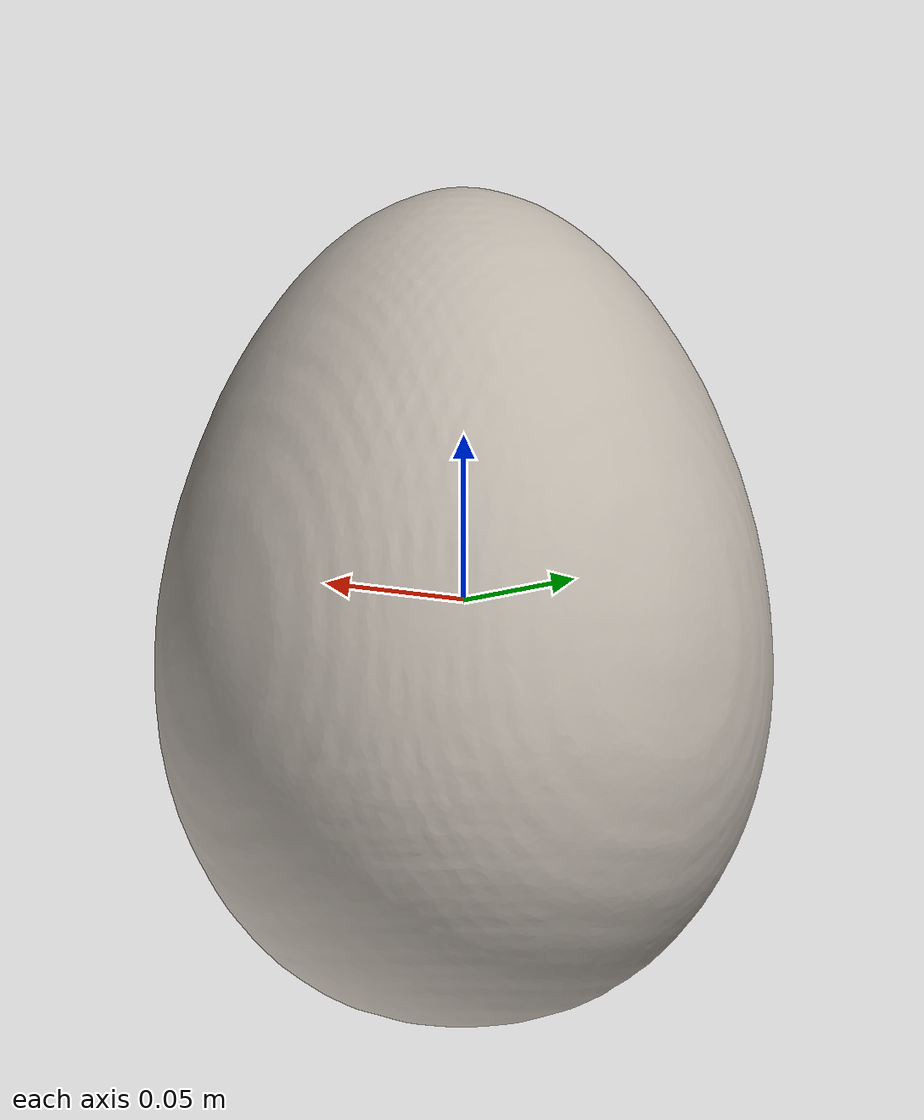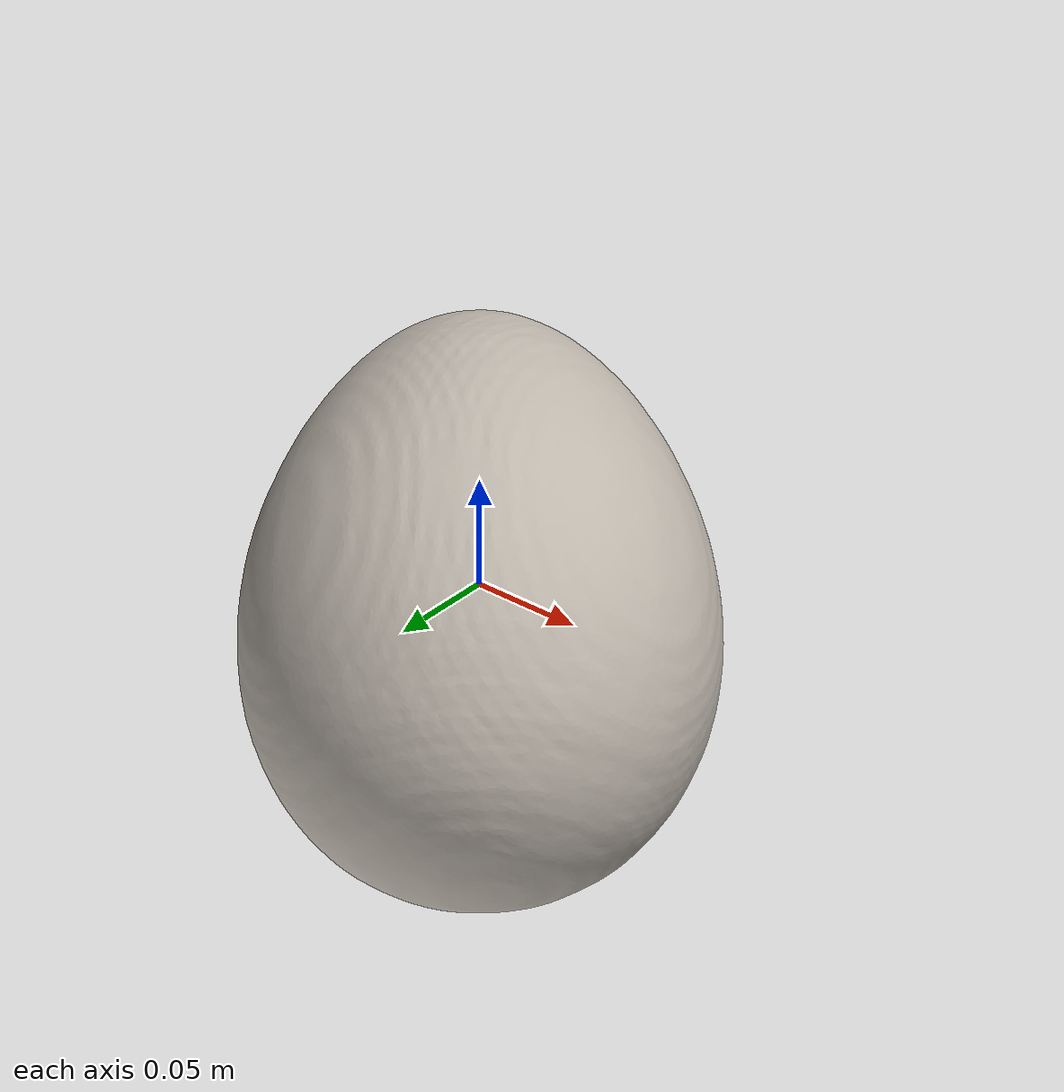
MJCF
<mujoco model="cutting_board_11">
  <asset>
    <mesh file="visual/model_normalized_0.obj" name="model_normalized_0_vis" scale="0.2500000000000001 0.2500000000000001 0.2500000000000001" refquat="1.0 0.0 0.0 0.0"/>
    <texture type="2d" name="image0" file="visual/image0.png"/>
    <material name="lambert1.002" texture="image0" specular="0.5" shininess="0.25"/>
  </asset>
  <custom>
    <text name="material_gt" data="wood"/>
  </custom>
  <default>
    <default class="region">
      <geom group="1" conaffinity="0" contype="0" rgba="0 1 0 0"/>
    </default>
  </default>
  <worldbody>
    <body>
      <body name="object">
        <geom solimp="0.998 0.998 0.001" solref="0.001 1" density="100" friction="0.95 0.3 0.1" type="mesh" mesh="model_normalized_0_vis" conaffinity="0" contype="0" group="1" material="lambert1.002"/>
        <geom solimp="0.998 0.998 0.001" solref="0.001 1" density="100" friction="0.95 0.3 0.1" type="box" group="0" rgba="0.8 0.8 0.8 0.0" size="0.07357354000000003 0.12273938750000006 0.007341810000000004" pos="-2.8637499999983897e-06 0.0 1.1774999999995123e-06"/>
        <geom class="region" name="reg_bbox" type="box" pos="-2.8637499999983897e-06 0.0 1.1774999999995123e-06" size="0.07357354000000003 0.12273938750000006 0.007341810000000004"/>
        <geom rgba="0 0 0 0 " size="0.075 0.12 0.001" pos="0 0 0.009" type="box" name="reg_int" class="region"/>
      </body>
    </body>
  </worldbody>
</mujoco>
